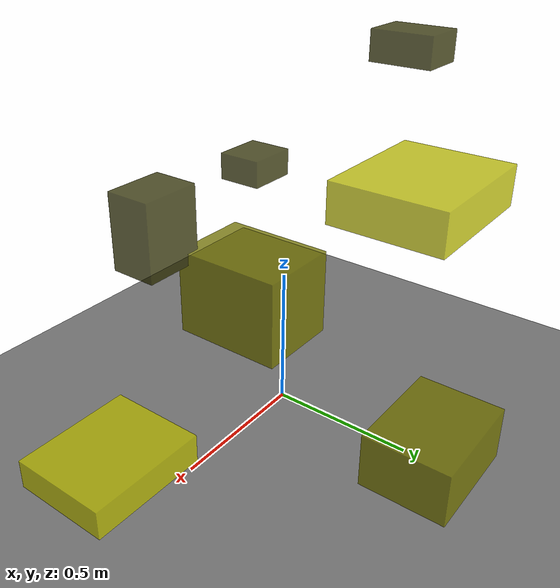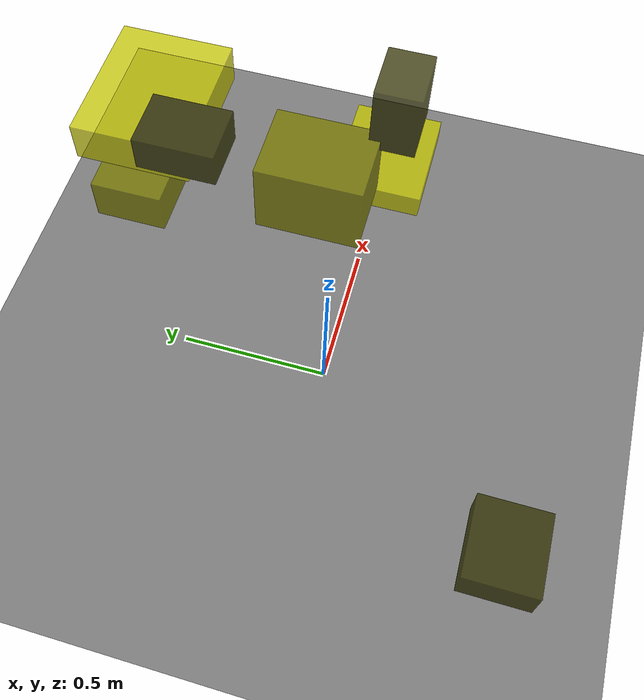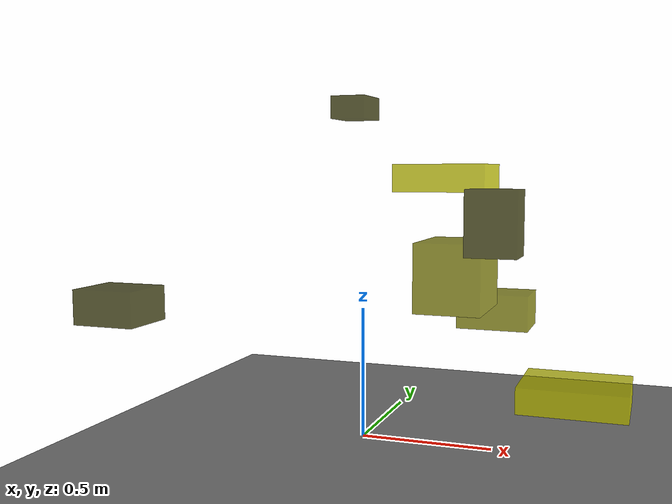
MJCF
<?xml version="1.0"?>
<mujoco model="obstacle_scene">
  <compiler angle="radian" coordinate="local"/>
  <option timestep="0.001" gravity="0 0 -9.81"/>

  <asset>
    <material name="obstacle_mat" rgba="0.8 0.8 0.0 0.8"/>
    <material name="ground_mat" rgba="0.5 0.5 0.5 1"/>
  </asset>

  <worldbody>
    <!-- Ground plane -->
    <geom name="ground" type="plane" size="3 3 0.1" material="ground_mat"/>

    <!-- Obstacles -->
    <body name="obstacle_0" pos="-0.149692 0.326699 1.281218">
      <geom name="obs_0" type="box" size="0.072564 0.096766 0.046056" rgba="0.2 0.2 0.0 0.8"/>
    </body>
    <body name="obstacle_1" pos="0.333109 0.126012 0.627556">
      <geom name="obs_1" type="box" size="0.126986 0.167337 0.131618" rgba="0.5 0.5 0.0 0.8"/>
    </body>
    <body name="obstacle_2" pos="0.185806 0.558812 0.993509">
      <geom name="obs_2" type="box" size="0.197594 0.160929 0.058478" rgba="0.8 0.8 0.0 0.8"/>
    </body>
    <body name="obstacle_3" pos="0.513018 -0.077298 0.841336">
      <geom name="obs_3" type="box" size="0.093554 0.072051 0.118722" rgba="0.2 0.2 0.0 0.8"/>
    </body>
    <body name="obstacle_4" pos="0.377178 0.745171 0.403231">
      <geom name="obs_4" type="box" size="0.157867 0.119876 0.077854" rgba="0.5 0.5 0.0 0.8"/>
    </body>
    <body name="obstacle_5" pos="0.799775 -0.018432 0.237548">
      <geom name="obs_5" type="box" size="0.188308 0.156791 0.046244" rgba="0.8 0.8 0.0 0.8"/>
    </body>
    <body name="obstacle_6" pos="-0.647075 -0.631115 0.575847">
      <geom name="obs_6" type="box" size="0.111290 0.098629 0.059249" rgba="0.2 0.2 0.0 0.8"/>
    </body>
  </worldbody>
</mujoco>
